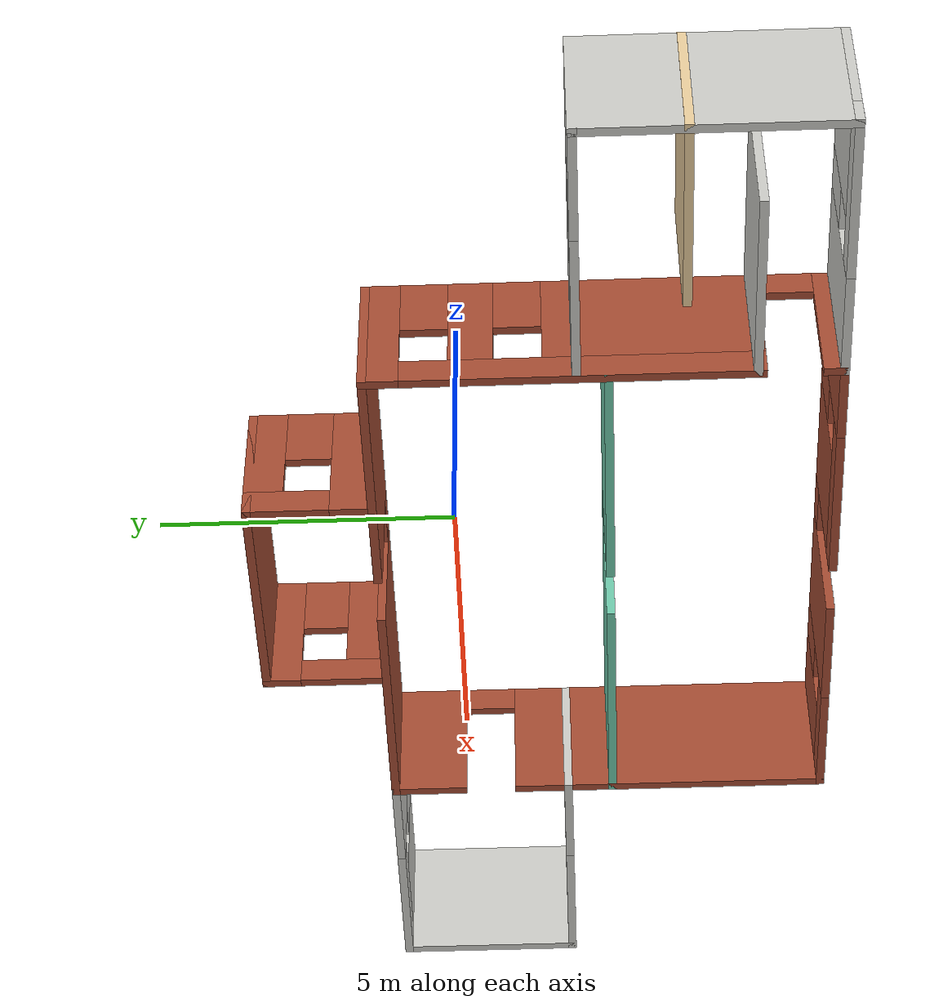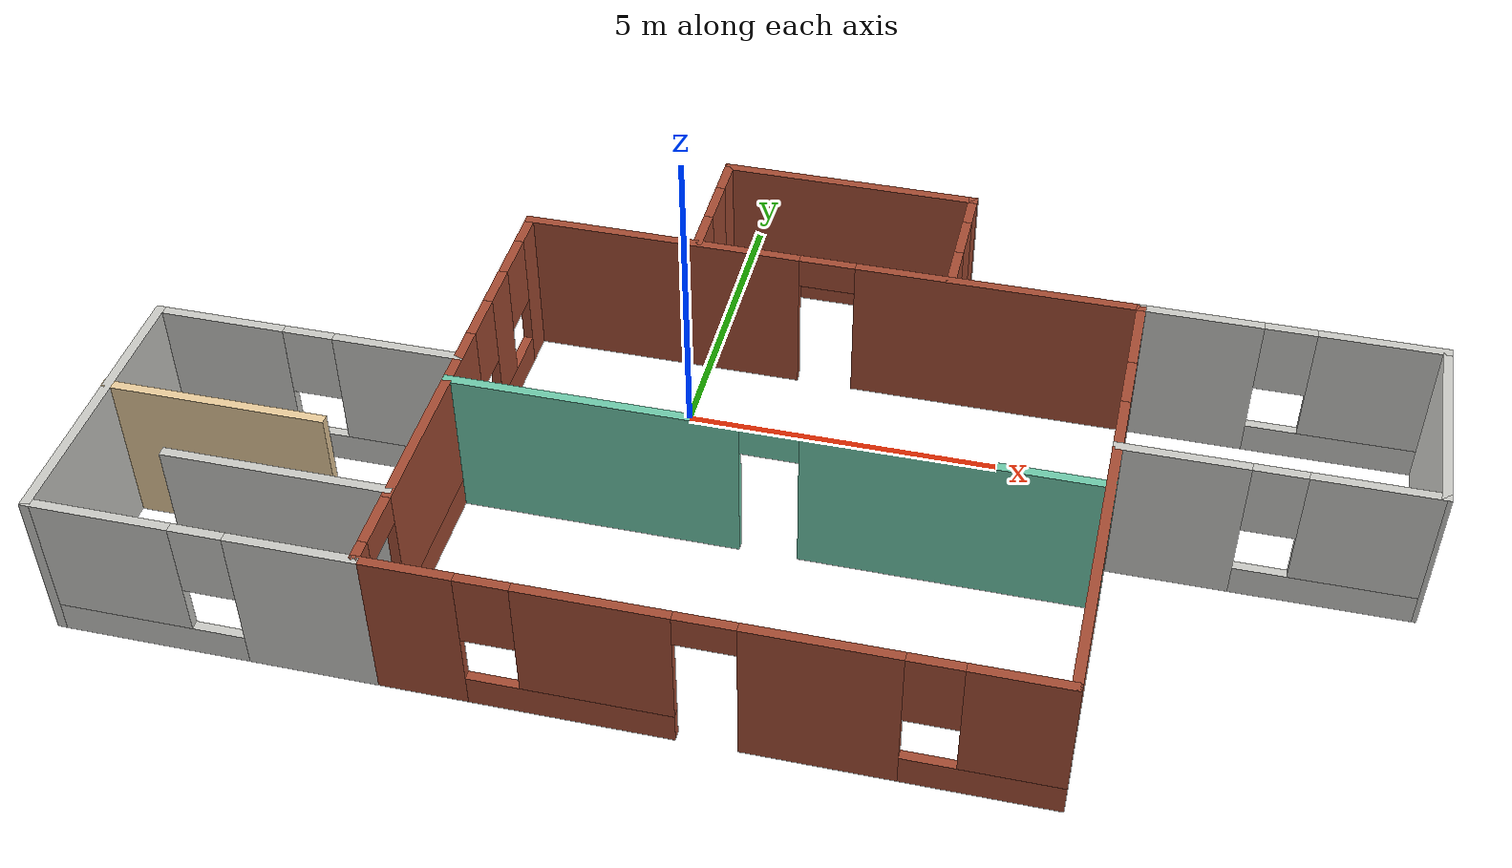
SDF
<?xml version='1.0'?>
<sdf version='1.6'>
  <model name='building'>
    <pose frame=''>1.82658 -1.46351 0 0 -0 0</pose>
    <link name='Wall_0'>
      <pose frame=''>0.129847 -4.99566 0 0 -0 0</pose>
      <visual name='Wall_0_Visual_0'>
        <pose frame=''>-4.24823 0 1.25 0 -0 0</pose>
        <geometry>
          <box>
            <size>1.50354 0.15 2.5</size>
          </box>
        </geometry>
        <material>
          <script>
            <uri>file://media/materials/scripts/gazebo.material</uri>
            <name>Gazebo/Bricks</name>
          </script>
          <ambient>1 1 1 1</ambient>
        </material>
        <meta>
          <layer>0</layer>
        </meta>
      </visual>
      <collision name='Wall_0_Collision_0'>
        <geometry>
          <box>
            <size>1.50354 0.15 2.5</size>
          </box>
        </geometry>
        <pose frame=''>-4.24823 0 1.25 0 -0 0</pose>
      </collision>
      <visual name='Wall_0_Visual_1'>
        <pose frame=''>1.5728 0 1.25 0 -0 0</pose>
        <geometry>
          <box>
            <size>2.24445 0.15 2.5</size>
          </box>
        </geometry>
        <material>
          <script>
            <uri>file://media/materials/scripts/gazebo.material</uri>
            <name>Gazebo/Bricks</name>
          </script>
          <ambient>1 1 1 1</ambient>
        </material>
        <meta>
          <layer>0</layer>
        </meta>
      </visual>
      <collision name='Wall_0_Collision_1'>
        <geometry>
          <box>
            <size>2.24445 0.15 2.5</size>
          </box>
        </geometry>
        <pose frame=''>1.5728 0 1.25 0 -0 0</pose>
      </collision>
      <visual name='Wall_0_Visual_2'>
        <pose frame=''>-1.97294 0 0.25 0 -0 0</pose>
        <geometry>
          <box>
            <size>3.04703 0.15 0.5</size>
          </box>
        </geometry>
        <material>
          <script>
            <uri>file://media/materials/scripts/gazebo.material</uri>
            <name>Gazebo/Bricks</name>
          </script>
          <ambient>1 1 1 1</ambient>
        </material>
        <meta>
          <layer>0</layer>
        </meta>
      </visual>
      <collision name='Wall_0_Collision_2'>
        <geometry>
          <box>
            <size>3.04703 0.15 0.5</size>
          </box>
        </geometry>
        <pose frame=''>-1.97294 0 0.25 0 -0 0</pose>
      </collision>
      <visual name='Wall_0_Visual_3'>
        <pose frame=''>3.84751 0 0.25 0 -0 0</pose>
        <geometry>
          <box>
            <size>2.30497 0.15 0.5</size>
          </box>
        </geometry>
        <material>
          <script>
            <uri>file://media/materials/scripts/gazebo.material</uri>
            <name>Gazebo/Bricks</name>
          </script>
          <ambient>1 1 1 1</ambient>
        </material>
        <meta>
          <layer>0</layer>
        </meta>
      </visual>
      <collision name='Wall_0_Collision_3'>
        <geometry>
          <box>
            <size>2.30497 0.15 0.5</size>
          </box>
        </geometry>
        <pose frame=''>3.84751 0 0.25 0 -0 0</pose>
      </collision>
      <visual name='Wall_0_Visual_4'>
        <pose frame=''>-1.57294 0 1.5 0 -0 0</pose>
        <geometry>
          <box>
            <size>2.24703 0.15 2</size>
          </box>
        </geometry>
        <material>
          <script>
            <uri>file://media/materials/scripts/gazebo.material</uri>
            <name>Gazebo/Bricks</name>
          </script>
          <ambient>1 1 1 1</ambient>
        </material>
        <meta>
          <layer>0</layer>
        </meta>
      </visual>
      <collision name='Wall_0_Collision_4'>
        <geometry>
          <box>
            <size>2.24703 0.15 2</size>
          </box>
        </geometry>
        <pose frame=''>-1.57294 0 1.5 0 -0 0</pose>
      </collision>
      <visual name='Wall_0_Visual_5'>
        <pose frame=''>-1.57294 0 1.5 0 -0 0</pose>
        <geometry>
          <box>
            <size>2.24703 0.15 2</size>
          </box>
        </geometry>
        <material>
          <script>
            <uri>file://media/materials/scripts/gazebo.material</uri>
            <name>Gazebo/Bricks</name>
          </script>
          <ambient>1 1 1 1</ambient>
        </material>
        <meta>
          <layer>0</layer>
        </meta>
      </visual>
      <collision name='Wall_0_Collision_5'>
        <geometry>
          <box>
            <size>2.24703 0.15 2</size>
          </box>
        </geometry>
        <pose frame=''>-1.57294 0 1.5 0 -0 0</pose>
      </collision>
      <visual name='Wall_0_Visual_6'>
        <pose frame=''>4.24751 0 1.5 0 -0 0</pose>
        <geometry>
          <box>
            <size>1.50497 0.15 2</size>
          </box>
        </geometry>
        <material>
          <script>
            <uri>file://media/materials/scripts/gazebo.material</uri>
            <name>Gazebo/Bricks</name>
          </script>
          <ambient>1 1 1 1</ambient>
        </material>
        <meta>
          <layer>0</layer>
        </meta>
      </visual>
      <collision name='Wall_0_Collision_6'>
        <geometry>
          <box>
            <size>1.50497 0.15 2</size>
          </box>
        </geometry>
        <pose frame=''>4.24751 0 1.5 0 -0 0</pose>
      </collision>
      <visual name='Wall_0_Visual_7'>
        <pose frame=''>-3.09646 0 1.9 0 -0 0</pose>
        <geometry>
          <box>
            <size>0.8 0.15 1.2</size>
          </box>
        </geometry>
        <material>
          <script>
            <uri>file://media/materials/scripts/gazebo.material</uri>
            <name>Gazebo/Bricks</name>
          </script>
          <ambient>1 1 1 1</ambient>
        </material>
        <meta>
          <layer>0</layer>
        </meta>
      </visual>
      <collision name='Wall_0_Collision_7'>
        <geometry>
          <box>
            <size>0.8 0.15 1.2</size>
          </box>
        </geometry>
        <pose frame=''>-3.09646 0 1.9 0 -0 0</pose>
      </collision>
      <visual name='Wall_0_Visual_8'>
        <pose frame=''>3.09503 0 1.9 0 -0 0</pose>
        <geometry>
          <box>
            <size>0.8 0.15 1.2</size>
          </box>
        </geometry>
        <material>
          <script>
            <uri>file://media/materials/scripts/gazebo.material</uri>
            <name>Gazebo/Bricks</name>
          </script>
          <ambient>1 1 1 1</ambient>
        </material>
        <meta>
          <layer>0</layer>
        </meta>
      </visual>
      <collision name='Wall_0_Collision_8'>
        <geometry>
          <box>
            <size>0.8 0.15 1.2</size>
          </box>
        </geometry>
        <pose frame=''>3.09503 0 1.9 0 -0 0</pose>
      </collision>
      <visual name='Wall_0_Visual_9'>
        <pose frame=''>0.000575 0 2.25 0 -0 0</pose>
        <geometry>
          <box>
            <size>0.9 0.15 0.5</size>
          </box>
        </geometry>
        <material>
          <script>
            <uri>file://media/materials/scripts/gazebo.material</uri>
            <name>Gazebo/Bricks</name>
          </script>
          <ambient>1 1 1 1</ambient>
        </material>
        <meta>
          <layer>0</layer>
        </meta>
      </visual>
      <collision name='Wall_0_Collision_9'>
        <geometry>
          <box>
            <size>0.9 0.15 0.5</size>
          </box>
        </geometry>
        <pose frame=''>0.000575 0 2.25 0 -0 0</pose>
      </collision>
      <visual name='Wall_0_Visual_10'>
        <pose frame=''>0.000575 0 2.25 0 -0 0</pose>
        <geometry>
          <box>
            <size>0.9 0.15 0.5</size>
          </box>
        </geometry>
        <material>
          <script>
            <uri>file://media/materials/scripts/gazebo.material</uri>
            <name>Gazebo/Bricks</name>
          </script>
          <ambient>1 1 1 1</ambient>
        </material>
        <meta>
          <layer>0</layer>
        </meta>
      </visual>
      <collision name='Wall_0_Collision_10'>
        <geometry>
          <box>
            <size>0.9 0.15 0.5</size>
          </box>
        </geometry>
        <pose frame=''>0.000575 0 2.25 0 -0 0</pose>
      </collision>
    </link>
    <link name='Wall_1'>
      <pose frame=''>5.05485 -1.07066 0 0 -0 1.5708</pose>
      <visual name='Wall_1_Visual_0'>
        <pose frame=''>-1.14884 0 1.25 0 -0 0</pose>
        <geometry>
          <box>
            <size>5.70231 0.15 2.5</size>
          </box>
        </geometry>
        <material>
          <script>
            <uri>file://media/materials/scripts/gazebo.material</uri>
            <name>Gazebo/Bricks</name>
          </script>
          <ambient>1 1 1 1</ambient>
        </material>
        <meta>
          <layer>0</layer>
        </meta>
      </visual>
      <collision name='Wall_1_Collision_0'>
        <geometry>
          <box>
            <size>5.70231 0.15 2.5</size>
          </box>
        </geometry>
        <pose frame=''>-1.14884 0 1.25 0 -0 0</pose>
      </collision>
      <visual name='Wall_1_Visual_1'>
        <pose frame=''>3.30116 0 1.25 0 -0 0</pose>
        <geometry>
          <box>
            <size>1.39769 0.15 2.5</size>
          </box>
        </geometry>
        <material>
          <script>
            <uri>file://media/materials/scripts/gazebo.material</uri>
            <name>Gazebo/Bricks</name>
          </script>
          <ambient>1 1 1 1</ambient>
        </material>
        <meta>
          <layer>0</layer>
        </meta>
      </visual>
      <collision name='Wall_1_Collision_1'>
        <geometry>
          <box>
            <size>1.39769 0.15 2.5</size>
          </box>
        </geometry>
        <pose frame=''>3.30116 0 1.25 0 -0 0</pose>
      </collision>
      <visual name='Wall_1_Visual_2'>
        <pose frame=''>2.15231 0 2.25 0 -0 0</pose>
        <geometry>
          <box>
            <size>0.9 0.15 0.5</size>
          </box>
        </geometry>
        <material>
          <script>
            <uri>file://media/materials/scripts/gazebo.material</uri>
            <name>Gazebo/Bricks</name>
          </script>
          <ambient>1 1 1 1</ambient>
        </material>
        <meta>
          <layer>0</layer>
        </meta>
      </visual>
      <collision name='Wall_1_Collision_2'>
        <geometry>
          <box>
            <size>0.9 0.15 0.5</size>
          </box>
        </geometry>
        <pose frame=''>2.15231 0 2.25 0 -0 0</pose>
      </collision>
    </link>
    <link name='Wall_10'>
      <collision name='Wall_10_Collision'>
        <geometry>
          <box>
            <size>3.5 0.15 2.5</size>
          </box>
        </geometry>
        <pose frame=''>0 0 1.25 0 -0 0</pose>
      </collision>
      <visual name='Wall_10_Visual'>
        <pose frame=''>0 0 1.25 0 -0 0</pose>
        <geometry>
          <box>
            <size>3.5 0.15 2.5</size>
          </box>
        </geometry>
        <material>
          <script>
            <uri>file://media/materials/scripts/gazebo.material</uri>
            <name>Gazebo/Grey</name>
          </script>
          <ambient>0.921569 0.807843 0.615686 1</ambient>
        </material>
        <meta>
          <layer>0</layer>
        </meta>
      </visual>
      <pose frame=''>-7.97989 -2.43004 0 0 -0 0</pose>
    </link>
    <link name='Wall_12'>
      <pose frame=''>0.133065 -1.17007 0 0 -0 0</pose>
      <visual name='Wall_12_Visual_0'>
        <pose frame=''>-2.73364 0 1.25 0 -0 0</pose>
        <geometry>
          <box>
            <size>4.53271 0.15 2.5</size>
          </box>
        </geometry>
        <material>
          <script>
            <uri>file://media/materials/scripts/gazebo.material</uri>
            <name>Gazebo/Grey</name>
          </script>
          <ambient>0.435294 0.796078 0.67451 1</ambient>
        </material>
        <meta>
          <layer>0</layer>
        </meta>
      </visual>
      <collision name='Wall_12_Collision_0'>
        <geometry>
          <box>
            <size>4.53271 0.15 2.5</size>
          </box>
        </geometry>
        <pose frame=''>-2.73364 0 1.25 0 -0 0</pose>
      </collision>
      <visual name='Wall_12_Visual_1'>
        <pose frame=''>2.71636 0 1.25 0 -0 0</pose>
        <geometry>
          <box>
            <size>4.56729 0.15 2.5</size>
          </box>
        </geometry>
        <material>
          <script>
            <uri>file://media/materials/scripts/gazebo.material</uri>
            <name>Gazebo/Grey</name>
          </script>
          <ambient>0.435294 0.796078 0.67451 1</ambient>
        </material>
        <meta>
          <layer>0</layer>
        </meta>
      </visual>
      <collision name='Wall_12_Collision_1'>
        <geometry>
          <box>
            <size>4.56729 0.15 2.5</size>
          </box>
        </geometry>
        <pose frame=''>2.71636 0 1.25 0 -0 0</pose>
      </collision>
      <visual name='Wall_12_Visual_2'>
        <pose frame=''>-0.017288 0 2.25 0 -0 0</pose>
        <geometry>
          <box>
            <size>0.9 0.15 0.5</size>
          </box>
        </geometry>
        <material>
          <script>
            <uri>file://media/materials/scripts/gazebo.material</uri>
            <name>Gazebo/Grey</name>
          </script>
          <ambient>0.435294 0.796078 0.67451 1</ambient>
        </material>
        <meta>
          <layer>0</layer>
        </meta>
      </visual>
      <collision name='Wall_12_Collision_2'>
        <geometry>
          <box>
            <size>0.9 0.15 0.5</size>
          </box>
        </geometry>
        <pose frame=''>-0.017288 0 2.25 0 -0 0</pose>
      </collision>
    </link>
    <link name='Wall_14'>
      <pose frame=''>-2.00976 3.94566 0 0 -0 1.5708</pose>
      <visual name='Wall_14_Visual_0'>
        <pose frame=''>-0.743931 0 1.25 0 -0 0</pose>
        <geometry>
          <box>
            <size>0.762138 0.15 2.5</size>
          </box>
        </geometry>
        <material>
          <script>
            <uri>file://media/materials/scripts/gazebo.material</uri>
            <name>Gazebo/Bricks</name>
          </script>
          <ambient>1 1 1 1</ambient>
        </material>
        <meta>
          <layer>0</layer>
        </meta>
      </visual>
      <collision name='Wall_14_Collision_0'>
        <geometry>
          <box>
            <size>0.762138 0.15 2.5</size>
          </box>
        </geometry>
        <pose frame=''>-0.743931 0 1.25 0 -0 0</pose>
      </collision>
      <visual name='Wall_14_Visual_1'>
        <pose frame=''>0.381069 0 0.25 0 -0 0</pose>
        <geometry>
          <box>
            <size>1.48786 0.15 0.5</size>
          </box>
        </geometry>
        <material>
          <script>
            <uri>file://media/materials/scripts/gazebo.material</uri>
            <name>Gazebo/Bricks</name>
          </script>
          <ambient>1 1 1 1</ambient>
        </material>
        <meta>
          <layer>0</layer>
        </meta>
      </visual>
      <collision name='Wall_14_Collision_1'>
        <geometry>
          <box>
            <size>1.48786 0.15 0.5</size>
          </box>
        </geometry>
        <pose frame=''>0.381069 0 0.25 0 -0 0</pose>
      </collision>
      <visual name='Wall_14_Visual_2'>
        <pose frame=''>0.781069 0 1.5 0 -0 0</pose>
        <geometry>
          <box>
            <size>0.687862 0.15 2</size>
          </box>
        </geometry>
        <material>
          <script>
            <uri>file://media/materials/scripts/gazebo.material</uri>
            <name>Gazebo/Bricks</name>
          </script>
          <ambient>1 1 1 1</ambient>
        </material>
        <meta>
          <layer>0</layer>
        </meta>
      </visual>
      <collision name='Wall_14_Collision_2'>
        <geometry>
          <box>
            <size>0.687862 0.15 2</size>
          </box>
        </geometry>
        <pose frame=''>0.781069 0 1.5 0 -0 0</pose>
      </collision>
      <visual name='Wall_14_Visual_3'>
        <pose frame=''>0.037138 0 1.9 0 -0 0</pose>
        <geometry>
          <box>
            <size>0.8 0.15 1.2</size>
          </box>
        </geometry>
        <material>
          <script>
            <uri>file://media/materials/scripts/gazebo.material</uri>
            <name>Gazebo/Bricks</name>
          </script>
          <ambient>1 1 1 1</ambient>
        </material>
        <meta>
          <layer>0</layer>
        </meta>
      </visual>
      <collision name='Wall_14_Collision_3'>
        <geometry>
          <box>
            <size>0.8 0.15 1.2</size>
          </box>
        </geometry>
        <pose frame=''>0.037138 0 1.9 0 -0 0</pose>
      </collision>
    </link>
    <link name='Wall_15'>
      <collision name='Wall_15_Collision'>
        <geometry>
          <box>
            <size>4.25 0.15 2.5</size>
          </box>
        </geometry>
        <pose frame=''>0 0 1.25 0 -0 0</pose>
      </collision>
      <visual name='Wall_15_Visual'>
        <pose frame=''>0 0 1.25 0 -0 0</pose>
        <geometry>
          <box>
            <size>4.25 0.15 2.5</size>
          </box>
        </geometry>
        <material>
          <script>
            <uri>file://media/materials/scripts/gazebo.material</uri>
            <name>Gazebo/Bricks</name>
          </script>
          <ambient>1 1 1 1</ambient>
        </material>
        <meta>
          <layer>0</layer>
        </meta>
      </visual>
      <pose frame=''>0.040235 4.99566 0 0 -0 0</pose>
    </link>
    <link name='Wall_16'>
      <pose frame=''>2.09023 3.94566 0 0 0 -1.5708</pose>
      <visual name='Wall_16_Visual_0'>
        <pose frame=''>-0.781069 0 1.25 0 -0 0</pose>
        <geometry>
          <box>
            <size>0.687862 0.15 2.5</size>
          </box>
        </geometry>
        <material>
          <script>
            <uri>file://media/materials/scripts/gazebo.material</uri>
            <name>Gazebo/Bricks</name>
          </script>
          <ambient>1 1 1 1</ambient>
        </material>
        <meta>
          <layer>0</layer>
        </meta>
      </visual>
      <collision name='Wall_16_Collision_0'>
        <geometry>
          <box>
            <size>0.687862 0.15 2.5</size>
          </box>
        </geometry>
        <pose frame=''>-0.781069 0 1.25 0 -0 0</pose>
      </collision>
      <visual name='Wall_16_Visual_1'>
        <pose frame=''>0.343931 0 0.25 0 -0 0</pose>
        <geometry>
          <box>
            <size>1.56214 0.15 0.5</size>
          </box>
        </geometry>
        <material>
          <script>
            <uri>file://media/materials/scripts/gazebo.material</uri>
            <name>Gazebo/Bricks</name>
          </script>
          <ambient>1 1 1 1</ambient>
        </material>
        <meta>
          <layer>0</layer>
        </meta>
      </visual>
      <collision name='Wall_16_Collision_1'>
        <geometry>
          <box>
            <size>1.56214 0.15 0.5</size>
          </box>
        </geometry>
        <pose frame=''>0.343931 0 0.25 0 -0 0</pose>
      </collision>
      <visual name='Wall_16_Visual_2'>
        <pose frame=''>0.743931 0 1.5 0 -0 0</pose>
        <geometry>
          <box>
            <size>0.762138 0.15 2</size>
          </box>
        </geometry>
        <material>
          <script>
            <uri>file://media/materials/scripts/gazebo.material</uri>
            <name>Gazebo/Bricks</name>
          </script>
          <ambient>1 1 1 1</ambient>
        </material>
        <meta>
          <layer>0</layer>
        </meta>
      </visual>
      <collision name='Wall_16_Collision_2'>
        <geometry>
          <box>
            <size>0.762138 0.15 2</size>
          </box>
        </geometry>
        <pose frame=''>0.743931 0 1.5 0 -0 0</pose>
      </collision>
      <visual name='Wall_16_Visual_3'>
        <pose frame=''>-0.037138 0 1.9 0 -0 0</pose>
        <geometry>
          <box>
            <size>0.8 0.15 1.2</size>
          </box>
        </geometry>
        <material>
          <script>
            <uri>file://media/materials/scripts/gazebo.material</uri>
            <name>Gazebo/Bricks</name>
          </script>
          <ambient>1 1 1 1</ambient>
        </material>
        <meta>
          <layer>0</layer>
        </meta>
      </visual>
      <collision name='Wall_16_Collision_3'>
        <geometry>
          <box>
            <size>0.8 0.15 1.2</size>
          </box>
        </geometry>
        <pose frame=''>-0.037138 0 1.9 0 -0 0</pose>
      </collision>
    </link>
    <link name='Wall_2'>
      <pose frame=''>0.129847 2.85433 0 0 -0 3.14159</pose>
      <visual name='Wall_2_Visual_0'>
        <pose frame=''>-2.7192 0 1.25 0 -0 0</pose>
        <geometry>
          <box>
            <size>4.5616 0.15 2.5</size>
          </box>
        </geometry>
        <material>
          <script>
            <uri>file://media/materials/scripts/gazebo.material</uri>
            <name>Gazebo/Bricks</name>
          </script>
          <ambient>1 1 1 1</ambient>
        </material>
        <meta>
          <layer>0</layer>
        </meta>
      </visual>
      <collision name='Wall_2_Collision_0'>
        <geometry>
          <box>
            <size>4.5616 0.15 2.5</size>
          </box>
        </geometry>
        <pose frame=''>-2.7192 0 1.25 0 -0 0</pose>
      </collision>
      <visual name='Wall_2_Visual_1'>
        <pose frame=''>2.7308 0 1.25 0 -0 0</pose>
        <geometry>
          <box>
            <size>4.5384 0.15 2.5</size>
          </box>
        </geometry>
        <material>
          <script>
            <uri>file://media/materials/scripts/gazebo.material</uri>
            <name>Gazebo/Bricks</name>
          </script>
          <ambient>1 1 1 1</ambient>
        </material>
        <meta>
          <layer>0</layer>
        </meta>
      </visual>
      <collision name='Wall_2_Collision_1'>
        <geometry>
          <box>
            <size>4.5384 0.15 2.5</size>
          </box>
        </geometry>
        <pose frame=''>2.7308 0 1.25 0 -0 0</pose>
      </collision>
      <visual name='Wall_2_Visual_2'>
        <pose frame=''>0.011596 0 2.25 0 -0 0</pose>
        <geometry>
          <box>
            <size>0.9 0.15 0.5</size>
          </box>
        </geometry>
        <material>
          <script>
            <uri>file://media/materials/scripts/gazebo.material</uri>
            <name>Gazebo/Bricks</name>
          </script>
          <ambient>1 1 1 1</ambient>
        </material>
        <meta>
          <layer>0</layer>
        </meta>
      </visual>
      <collision name='Wall_2_Collision_2'>
        <geometry>
          <box>
            <size>0.9 0.15 0.5</size>
          </box>
        </geometry>
        <pose frame=''>0.011596 0 2.25 0 -0 0</pose>
      </collision>
    </link>
    <link name='Wall_23'>
      <pose frame=''>7.35485 2.85433 0 0 -0 0</pose>
      <visual name='Wall_23_Visual_0'>
        <pose frame=''>-1.39772 0 1.25 0 -0 0</pose>
        <geometry>
          <box>
            <size>1.95457 0.15 2.5</size>
          </box>
        </geometry>
        <material>
          <script>
            <uri>file://media/materials/scripts/gazebo.material</uri>
            <name>Gazebo/CeilingTiled</name>
          </script>
          <ambient>0.760784 0.662745 0.627451 1</ambient>
        </material>
        <meta>
          <layer>0</layer>
        </meta>
      </visual>
      <collision name='Wall_23_Collision_0'>
        <geometry>
          <box>
            <size>1.95457 0.15 2.5</size>
          </box>
        </geometry>
        <pose frame=''>-1.39772 0 1.25 0 -0 0</pose>
      </collision>
      <visual name='Wall_23_Visual_1'>
        <pose frame=''>0.977283 0 0.25 0 -0 0</pose>
        <geometry>
          <box>
            <size>2.79543 0.15 0.5</size>
          </box>
        </geometry>
        <material>
          <script>
            <uri>file://media/materials/scripts/gazebo.material</uri>
            <name>Gazebo/CeilingTiled</name>
          </script>
          <ambient>0.760784 0.662745 0.627451 1</ambient>
        </material>
        <meta>
          <layer>0</layer>
        </meta>
      </visual>
      <collision name='Wall_23_Collision_1'>
        <geometry>
          <box>
            <size>2.79543 0.15 0.5</size>
          </box>
        </geometry>
        <pose frame=''>0.977283 0 0.25 0 -0 0</pose>
      </collision>
      <visual name='Wall_23_Visual_2'>
        <pose frame=''>1.37728 0 1.5 0 -0 0</pose>
        <geometry>
          <box>
            <size>1.99543 0.15 2</size>
          </box>
        </geometry>
        <material>
          <script>
            <uri>file://media/materials/scripts/gazebo.material</uri>
            <name>Gazebo/CeilingTiled</name>
          </script>
          <ambient>0.760784 0.662745 0.627451 1</ambient>
        </material>
        <meta>
          <layer>0</layer>
        </meta>
      </visual>
      <collision name='Wall_23_Collision_2'>
        <geometry>
          <box>
            <size>1.99543 0.15 2</size>
          </box>
        </geometry>
        <pose frame=''>1.37728 0 1.5 0 -0 0</pose>
      </collision>
      <visual name='Wall_23_Visual_3'>
        <pose frame=''>-0.020434 0 1.9 0 -0 0</pose>
        <geometry>
          <box>
            <size>0.8 0.15 1.2</size>
          </box>
        </geometry>
        <material>
          <script>
            <uri>file://media/materials/scripts/gazebo.material</uri>
            <name>Gazebo/CeilingTiled</name>
          </script>
          <ambient>0.760784 0.662745 0.627451 1</ambient>
        </material>
        <meta>
          <layer>0</layer>
        </meta>
      </visual>
      <collision name='Wall_23_Collision_3'>
        <geometry>
          <box>
            <size>0.8 0.15 1.2</size>
          </box>
        </geometry>
        <pose frame=''>-0.020434 0 1.9 0 -0 0</pose>
      </collision>
    </link>
    <link name='Wall_3'>
      <pose frame=''>-4.79515 -1.07066 0 0 0 -1.5708</pose>
      <visual name='Wall_3_Visual_0'>
        <pose frame=''>-3.66273 0 1.25 0 -0 0</pose>
        <geometry>
          <box>
            <size>0.674547 0.15 2.5</size>
          </box>
        </geometry>
        <material>
          <script>
            <uri>file://media/materials/scripts/gazebo.material</uri>
            <name>Gazebo/Bricks</name>
          </script>
          <ambient>1 1 1 1</ambient>
        </material>
        <meta>
          <layer>0</layer>
        </meta>
      </visual>
      <collision name='Wall_3_Collision_0'>
        <geometry>
          <box>
            <size>0.674547 0.15 2.5</size>
          </box>
        </geometry>
        <pose frame=''>-3.66273 0 1.25 0 -0 0</pose>
      </collision>
      <visual name='Wall_3_Visual_1'>
        <pose frame=''>3.78969 0 1.25 0 -0 0</pose>
        <geometry>
          <box>
            <size>0.420627 0.15 2.5</size>
          </box>
        </geometry>
        <material>
          <script>
            <uri>file://media/materials/scripts/gazebo.material</uri>
            <name>Gazebo/Bricks</name>
          </script>
          <ambient>1 1 1 1</ambient>
        </material>
        <meta>
          <layer>0</layer>
        </meta>
      </visual>
      <collision name='Wall_3_Collision_1'>
        <geometry>
          <box>
            <size>0.420627 0.15 2.5</size>
          </box>
        </geometry>
        <pose frame=''>3.78969 0 1.25 0 -0 0</pose>
      </collision>
      <visual name='Wall_3_Visual_2'>
        <pose frame=''>-0.32304 0 0.25 0 -0 0</pose>
        <geometry>
          <box>
            <size>6.00483 0.15 0.5</size>
          </box>
        </geometry>
        <material>
          <script>
            <uri>file://media/materials/scripts/gazebo.material</uri>
            <name>Gazebo/Bricks</name>
          </script>
          <ambient>1 1 1 1</ambient>
        </material>
        <meta>
          <layer>0</layer>
        </meta>
      </visual>
      <collision name='Wall_3_Collision_2'>
        <geometry>
          <box>
            <size>6.00483 0.15 0.5</size>
          </box>
        </geometry>
        <pose frame=''>-0.32304 0 0.25 0 -0 0</pose>
      </collision>
      <visual name='Wall_3_Visual_3'>
        <pose frame=''>-2.15058 0 1.5 0 -0 0</pose>
        <geometry>
          <box>
            <size>0.749751 0.15 2</size>
          </box>
        </geometry>
        <material>
          <script>
            <uri>file://media/materials/scripts/gazebo.material</uri>
            <name>Gazebo/Bricks</name>
          </script>
          <ambient>1 1 1 1</ambient>
        </material>
        <meta>
          <layer>0</layer>
        </meta>
      </visual>
      <collision name='Wall_3_Collision_3'>
        <geometry>
          <box>
            <size>0.749751 0.15 2</size>
          </box>
        </geometry>
        <pose frame=''>-2.15058 0 1.5 0 -0 0</pose>
      </collision>
      <visual name='Wall_3_Visual_4'>
        <pose frame=''>0.851835 0 1.5 0 -0 0</pose>
        <geometry>
          <box>
            <size>3.65508 0.15 2</size>
          </box>
        </geometry>
        <material>
          <script>
            <uri>file://media/materials/scripts/gazebo.material</uri>
            <name>Gazebo/Bricks</name>
          </script>
          <ambient>1 1 1 1</ambient>
        </material>
        <meta>
          <layer>0</layer>
        </meta>
      </visual>
      <collision name='Wall_3_Collision_4'>
        <geometry>
          <box>
            <size>3.65508 0.15 2</size>
          </box>
        </geometry>
        <pose frame=''>0.851835 0 1.5 0 -0 0</pose>
      </collision>
      <visual name='Wall_3_Visual_5'>
        <pose frame=''>-2.92545 0 1.9 0 -0 0</pose>
        <geometry>
          <box>
            <size>0.8 0.15 1.2</size>
          </box>
        </geometry>
        <material>
          <script>
            <uri>file://media/materials/scripts/gazebo.material</uri>
            <name>Gazebo/Bricks</name>
          </script>
          <ambient>1 1 1 1</ambient>
        </material>
        <meta>
          <layer>0</layer>
        </meta>
      </visual>
      <collision name='Wall_3_Collision_5'>
        <geometry>
          <box>
            <size>0.8 0.15 1.2</size>
          </box>
        </geometry>
        <pose frame=''>-2.92545 0 1.9 0 -0 0</pose>
      </collision>
      <visual name='Wall_3_Visual_6'>
        <pose frame=''>-1.3757 0 1.9 0 -0 0</pose>
        <geometry>
          <box>
            <size>0.8 0.15 1.2</size>
          </box>
        </geometry>
        <material>
          <script>
            <uri>file://media/materials/scripts/gazebo.material</uri>
            <name>Gazebo/Bricks</name>
          </script>
          <ambient>1 1 1 1</ambient>
        </material>
        <meta>
          <layer>0</layer>
        </meta>
      </visual>
      <collision name='Wall_3_Collision_6'>
        <geometry>
          <box>
            <size>0.8 0.15 1.2</size>
          </box>
        </geometry>
        <pose frame=''>-1.3757 0 1.9 0 -0 0</pose>
      </collision>
      <visual name='Wall_3_Visual_7'>
        <pose frame=''>3.12937 0 2.25 0 -0 0</pose>
        <geometry>
          <box>
            <size>0.9 0.15 0.5</size>
          </box>
        </geometry>
        <material>
          <script>
            <uri>file://media/materials/scripts/gazebo.material</uri>
            <name>Gazebo/Bricks</name>
          </script>
          <ambient>1 1 1 1</ambient>
        </material>
        <meta>
          <layer>0</layer>
        </meta>
      </visual>
      <collision name='Wall_3_Collision_7'>
        <geometry>
          <box>
            <size>0.9 0.15 0.5</size>
          </box>
        </geometry>
        <pose frame=''>3.12937 0 2.25 0 -0 0</pose>
      </collision>
    </link>
    <link name='Wall_32'>
      <pose frame=''>7.3531 -0.347976 0 0 -0 0</pose>
      <visual name='Wall_32_Visual_0'>
        <pose frame=''>-1.38163 0 1.25 0 -0 0</pose>
        <geometry>
          <box>
            <size>1.98673 0.15 2.5</size>
          </box>
        </geometry>
        <material>
          <script>
            <uri>file://media/materials/scripts/gazebo.material</uri>
            <name>Gazebo/CeilingTiled</name>
          </script>
          <ambient>0.760784 0.662745 0.627451 1</ambient>
        </material>
        <meta>
          <layer>0</layer>
        </meta>
      </visual>
      <collision name='Wall_32_Collision_0'>
        <geometry>
          <box>
            <size>1.98673 0.15 2.5</size>
          </box>
        </geometry>
        <pose frame=''>-1.38163 0 1.25 0 -0 0</pose>
      </collision>
      <visual name='Wall_32_Visual_1'>
        <pose frame=''>0.993365 0 0.25 0 -0 0</pose>
        <geometry>
          <box>
            <size>2.76327 0.15 0.5</size>
          </box>
        </geometry>
        <material>
          <script>
            <uri>file://media/materials/scripts/gazebo.material</uri>
            <name>Gazebo/CeilingTiled</name>
          </script>
          <ambient>0.760784 0.662745 0.627451 1</ambient>
        </material>
        <meta>
          <layer>0</layer>
        </meta>
      </visual>
      <collision name='Wall_32_Collision_1'>
        <geometry>
          <box>
            <size>2.76327 0.15 0.5</size>
          </box>
        </geometry>
        <pose frame=''>0.993365 0 0.25 0 -0 0</pose>
      </collision>
      <visual name='Wall_32_Visual_2'>
        <pose frame=''>1.39336 0 1.5 0 -0 0</pose>
        <geometry>
          <box>
            <size>1.96327 0.15 2</size>
          </box>
        </geometry>
        <material>
          <script>
            <uri>file://media/materials/scripts/gazebo.material</uri>
            <name>Gazebo/CeilingTiled</name>
          </script>
          <ambient>0.760784 0.662745 0.627451 1</ambient>
        </material>
        <meta>
          <layer>0</layer>
        </meta>
      </visual>
      <collision name='Wall_32_Collision_2'>
        <geometry>
          <box>
            <size>1.96327 0.15 2</size>
          </box>
        </geometry>
        <pose frame=''>1.39336 0 1.5 0 -0 0</pose>
      </collision>
      <visual name='Wall_32_Visual_3'>
        <pose frame=''>0.01173 0 1.9 0 -0 0</pose>
        <geometry>
          <box>
            <size>0.8 0.15 1.2</size>
          </box>
        </geometry>
        <material>
          <script>
            <uri>file://media/materials/scripts/gazebo.material</uri>
            <name>Gazebo/CeilingTiled</name>
          </script>
          <ambient>0.760784 0.662745 0.627451 1</ambient>
        </material>
        <meta>
          <layer>0</layer>
        </meta>
      </visual>
      <collision name='Wall_32_Collision_3'>
        <geometry>
          <box>
            <size>0.8 0.15 1.2</size>
          </box>
        </geometry>
        <pose frame=''>0.01173 0 1.9 0 -0 0</pose>
      </collision>
    </link>
    <link name='Wall_33'>
      <collision name='Wall_33_Collision'>
        <geometry>
          <box>
            <size>3.35231 0.15 2.5</size>
          </box>
        </geometry>
        <pose frame=''>0 0 1.25 0 -0 0</pose>
      </collision>
      <visual name='Wall_33_Visual'>
        <pose frame=''>0 0 1.25 0 -0 0</pose>
        <geometry>
          <box>
            <size>3.35231 0.15 2.5</size>
          </box>
        </geometry>
        <material>
          <script>
            <uri>file://media/materials/scripts/gazebo.material</uri>
            <name>Gazebo/CeilingTiled</name>
          </script>
          <ambient>0.760784 0.662745 0.627451 1</ambient>
        </material>
        <meta>
          <layer>0</layer>
        </meta>
      </visual>
      <pose frame=''>9.65397 1.25318 0 0 -0 1.57025</pose>
    </link>
    <link name='Wall_4'>
      <pose frame=''>-7.22015 -4.99566 0 0 -0 3.14159</pose>
      <visual name='Wall_4_Visual_0'>
        <pose frame=''>-1.51294 0 1.25 0 -0 0</pose>
        <geometry>
          <box>
            <size>1.97411 0.15 2.5</size>
          </box>
        </geometry>
        <material>
          <script>
            <uri>file://media/materials/scripts/gazebo.material</uri>
            <name>Gazebo/CeilingTiled</name>
          </script>
          <ambient>0.921569 0.807843 0.615686 1</ambient>
        </material>
        <meta>
          <layer>0</layer>
        </meta>
      </visual>
      <collision name='Wall_4_Collision_0'>
        <geometry>
          <box>
            <size>1.97411 0.15 2.5</size>
          </box>
        </geometry>
        <pose frame=''>-1.51294 0 1.25 0 -0 0</pose>
      </collision>
      <visual name='Wall_4_Visual_1'>
        <pose frame=''>0.987056 0 0.25 0 -0 0</pose>
        <geometry>
          <box>
            <size>3.02589 0.15 0.5</size>
          </box>
        </geometry>
        <material>
          <script>
            <uri>file://media/materials/scripts/gazebo.material</uri>
            <name>Gazebo/CeilingTiled</name>
          </script>
          <ambient>0.921569 0.807843 0.615686 1</ambient>
        </material>
        <meta>
          <layer>0</layer>
        </meta>
      </visual>
      <collision name='Wall_4_Collision_1'>
        <geometry>
          <box>
            <size>3.02589 0.15 0.5</size>
          </box>
        </geometry>
        <pose frame=''>0.987056 0 0.25 0 -0 0</pose>
      </collision>
      <visual name='Wall_4_Visual_2'>
        <pose frame=''>1.38706 0 1.5 0 -0 0</pose>
        <geometry>
          <box>
            <size>2.22589 0.15 2</size>
          </box>
        </geometry>
        <material>
          <script>
            <uri>file://media/materials/scripts/gazebo.material</uri>
            <name>Gazebo/CeilingTiled</name>
          </script>
          <ambient>0.921569 0.807843 0.615686 1</ambient>
        </material>
        <meta>
          <layer>0</layer>
        </meta>
      </visual>
      <collision name='Wall_4_Collision_2'>
        <geometry>
          <box>
            <size>2.22589 0.15 2</size>
          </box>
        </geometry>
        <pose frame=''>1.38706 0 1.5 0 -0 0</pose>
      </collision>
      <visual name='Wall_4_Visual_3'>
        <pose frame=''>-0.125889 0 1.9 0 -0 0</pose>
        <geometry>
          <box>
            <size>0.8 0.15 1.2</size>
          </box>
        </geometry>
        <material>
          <script>
            <uri>file://media/materials/scripts/gazebo.material</uri>
            <name>Gazebo/CeilingTiled</name>
          </script>
          <ambient>0.921569 0.807843 0.615686 1</ambient>
        </material>
        <meta>
          <layer>0</layer>
        </meta>
      </visual>
      <collision name='Wall_4_Collision_3'>
        <geometry>
          <box>
            <size>0.8 0.15 1.2</size>
          </box>
        </geometry>
        <pose frame=''>-0.125889 0 1.9 0 -0 0</pose>
      </collision>
    </link>
    <link name='Wall_5'>
      <collision name='Wall_5_Collision'>
        <geometry>
          <box>
            <size>4.5 0.15 2.5</size>
          </box>
        </geometry>
        <pose frame=''>0 0 1.25 0 -0 0</pose>
      </collision>
      <visual name='Wall_5_Visual'>
        <pose frame=''>0 0 1.25 0 -0 0</pose>
        <geometry>
          <box>
            <size>4.5 0.15 2.5</size>
          </box>
        </geometry>
        <material>
          <script>
            <uri>file://media/materials/scripts/gazebo.material</uri>
            <name>Gazebo/CeilingTiled</name>
          </script>
          <ambient>0.921569 0.807843 0.615686 1</ambient>
        </material>
        <meta>
          <layer>0</layer>
        </meta>
      </visual>
      <pose frame=''>-9.64515 -2.82066 0 0 -0 1.5708</pose>
    </link>
    <link name='Wall_6'>
      <pose frame=''>-7.22015 -0.645665 0 0 -0 0</pose>
      <visual name='Wall_6_Visual_0'>
        <pose frame=''>-1.43953 0 1.25 0 -0 0</pose>
        <geometry>
          <box>
            <size>2.12095 0.15 2.5</size>
          </box>
        </geometry>
        <material>
          <script>
            <uri>file://media/materials/scripts/gazebo.material</uri>
            <name>Gazebo/CeilingTiled</name>
          </script>
          <ambient>0.921569 0.807843 0.615686 1</ambient>
        </material>
        <meta>
          <layer>0</layer>
        </meta>
      </visual>
      <collision name='Wall_6_Collision_0'>
        <geometry>
          <box>
            <size>2.12095 0.15 2.5</size>
          </box>
        </geometry>
        <pose frame=''>-1.43953 0 1.25 0 -0 0</pose>
      </collision>
      <visual name='Wall_6_Visual_1'>
        <pose frame=''>1.06047 0 0.25 0 -0 0</pose>
        <geometry>
          <box>
            <size>2.87905 0.15 0.5</size>
          </box>
        </geometry>
        <material>
          <script>
            <uri>file://media/materials/scripts/gazebo.material</uri>
            <name>Gazebo/CeilingTiled</name>
          </script>
          <ambient>0.921569 0.807843 0.615686 1</ambient>
        </material>
        <meta>
          <layer>0</layer>
        </meta>
      </visual>
      <collision name='Wall_6_Collision_1'>
        <geometry>
          <box>
            <size>2.87905 0.15 0.5</size>
          </box>
        </geometry>
        <pose frame=''>1.06047 0 0.25 0 -0 0</pose>
      </collision>
      <visual name='Wall_6_Visual_2'>
        <pose frame=''>1.46047 0 1.5 0 -0 0</pose>
        <geometry>
          <box>
            <size>2.07905 0.15 2</size>
          </box>
        </geometry>
        <material>
          <script>
            <uri>file://media/materials/scripts/gazebo.material</uri>
            <name>Gazebo/CeilingTiled</name>
          </script>
          <ambient>0.921569 0.807843 0.615686 1</ambient>
        </material>
        <meta>
          <layer>0</layer>
        </meta>
      </visual>
      <collision name='Wall_6_Collision_2'>
        <geometry>
          <box>
            <size>2.07905 0.15 2</size>
          </box>
        </geometry>
        <pose frame=''>1.46047 0 1.5 0 -0 0</pose>
      </collision>
      <visual name='Wall_6_Visual_3'>
        <pose frame=''>0.020948 0 1.9 0 -0 0</pose>
        <geometry>
          <box>
            <size>0.8 0.15 1.2</size>
          </box>
        </geometry>
        <material>
          <script>
            <uri>file://media/materials/scripts/gazebo.material</uri>
            <name>Gazebo/CeilingTiled</name>
          </script>
          <ambient>0.921569 0.807843 0.615686 1</ambient>
        </material>
        <meta>
          <layer>0</layer>
        </meta>
      </visual>
      <collision name='Wall_6_Collision_3'>
        <geometry>
          <box>
            <size>0.8 0.15 1.2</size>
          </box>
        </geometry>
        <pose frame=''>0.020948 0 1.9 0 -0 0</pose>
      </collision>
    </link>
    <link name='Wall_8'>
      <collision name='Wall_8_Collision'>
        <geometry>
          <box>
            <size>3.5 0.15 2.5</size>
          </box>
        </geometry>
        <pose frame=''>0 0 1.25 0 -0 0</pose>
      </collision>
      <visual name='Wall_8_Visual'>
        <pose frame=''>0 0 1.25 0 -0 0</pose>
        <geometry>
          <box>
            <size>3.5 0.15 2.5</size>
          </box>
        </geometry>
        <material>
          <script>
            <uri>file://media/materials/scripts/gazebo.material</uri>
            <name>Gazebo/CeilingTiled</name>
          </script>
          <ambient>0.921569 0.807843 0.615686 1</ambient>
        </material>
        <meta>
          <layer>0</layer>
        </meta>
      </visual>
      <pose frame=''>-6.50263 -3.59663 0 0 -0 3.14159</pose>
    </link>
    <static>1</static>
  </model>
</sdf>
